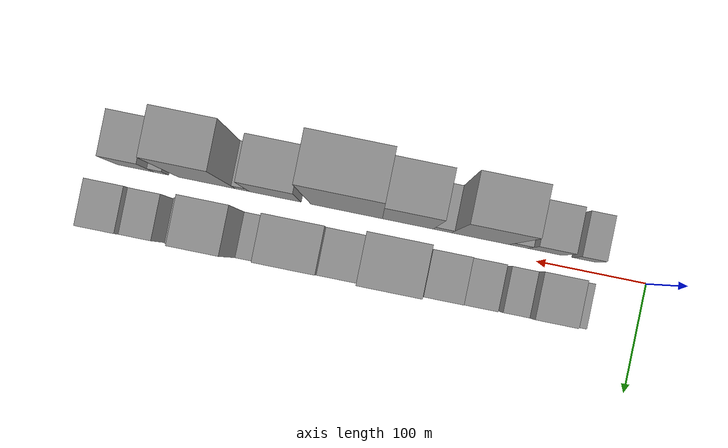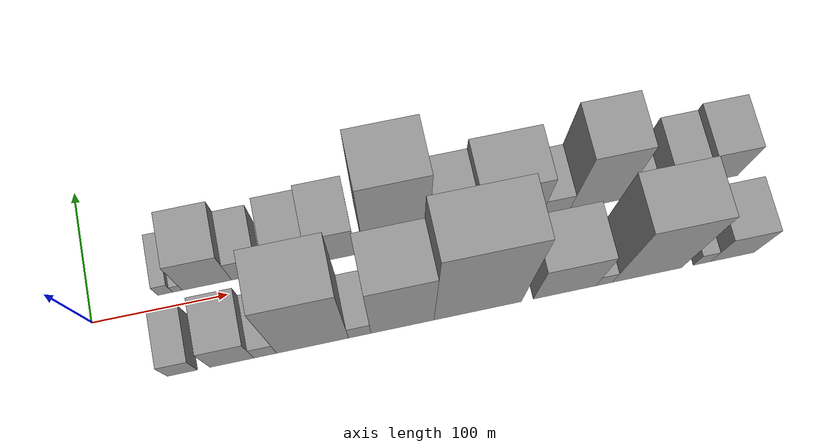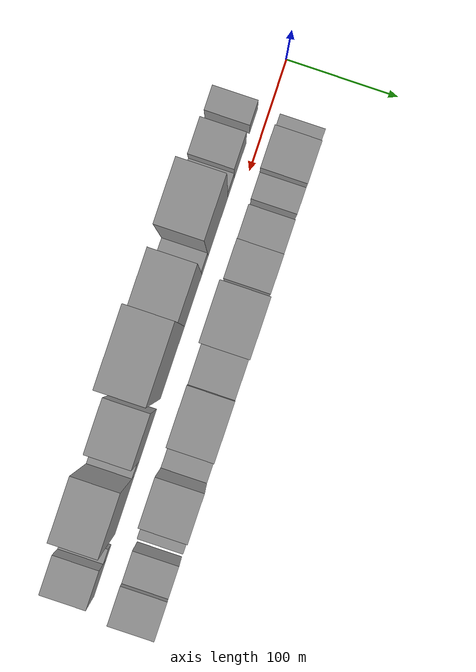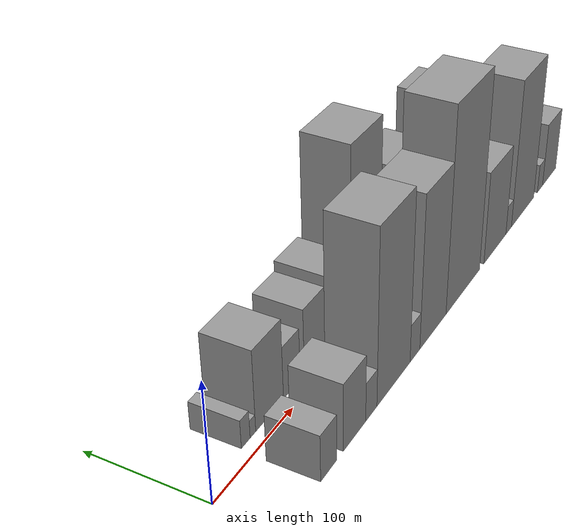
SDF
<sdf version="1.6">
 <world name="default">
  <scene>
   <sky><clouds><speed>12</speed></clouds></sky>
   <ambient>0.4 0.4 0.4 1</ambient>
   <background>0.7 0.7 0.7 1</background>
   <shadows>1</shadows>
  </scene>
  <gravity>0 0 -9.8066</gravity>
  <magnetic_field>6e-06 2.3e-05 -4.2e-05</magnetic_field>
  <physics default="0" name="default_physics" type="ode">
   <ode>
    <solver>
     <type>quick</type>
     <iters>10</iters>
     <sor>1.0</sor>
     <use_dynamic_moi_rescaling>0</use_dynamic_moi_rescaling>
    </solver>
    <constraints>
     <cfm>0</cfm>
     <erp>0.2</erp>
     <contact_max_correcting_vel>100</contact_max_correcting_vel>
     <contact_surface_layer>0.001</contact_surface_layer>
    </constraints>
   </ode>
   <max_step_size>0.004</max_step_size>
   <real_time_factor>1</real_time_factor>
   <real_time_update_rate>250</real_time_update_rate>
  </physics>
  <light name="sun" type="directional">
   <pose>0 0 10 0 0 0</pose>
   <diffuse>0.8 0.8 0.8 1</diffuse>
   <specular>0.2 0.2 0.2 1</specular>
   <attenuation>
    <range>1000</range>
    <constant>0.9</constant>
    <linear>0.01</linear>
    <quadratic>0.001</quadratic>
   </attenuation>
   <direction>-0.5 0.1 -0.9</direction>
  </light>
  <model name="building_1">
   <static>1</static>
   <pose>55.4585 30.0000 0 0.000000 0.000000 1.570796</pose>
   <link name="link">
    <pose>0 0 12.00 0 0 0</pose>
    <collision name="collision"><geometry><box><size>40.0000 10.9169 24.0000</size></box></geometry></collision>
    <visual name="visual">
     <cast_shadows>0</cast_shadows>
     <geometry><box><size>40.0000 10.9169 24.0000</size></box></geometry>
     <material>
      <script>
       <uri>model://grey_wall/materials/scripts</uri>
       <uri>model://grey_wall/materials/textures</uri>
       <name>vrc/grey_wall</name>
      </script>
     </material>
    </visual>
   </link>
  </model>
  <model name="building_2">
   <static>1</static>
   <pose>64.4685 30.0000 0 0.000000 0.000000 1.570796</pose>
   <link name="link">
    <pose>0 0 7.50 0 0 0</pose>
    <collision name="collision"><geometry><box><size>40.0000 7.1032 15.0000</size></box></geometry></collision>
    <visual name="visual">
     <cast_shadows>0</cast_shadows>
     <geometry><box><size>40.0000 7.1032 15.0000</size></box></geometry>
     <material>
      <script>
       <uri>model://grey_wall/materials/scripts</uri>
       <uri>model://grey_wall/materials/textures</uri>
       <name>vrc/grey_wall</name>
      </script>
     </material>
    </visual>
   </link>
  </model>
  <model name="building_3">
   <static>1</static>
   <pose>86.2862 30.0000 0 0.000000 0.000000 1.570796</pose>
   <link name="link">
    <pose>0 0 34.50 0 0 0</pose>
    <collision name="collision"><geometry><box><size>40.0000 36.5322 69.0000</size></box></geometry></collision>
    <visual name="visual">
     <cast_shadows>0</cast_shadows>
     <geometry><box><size>40.0000 36.5322 69.0000</size></box></geometry>
     <material>
      <script>
       <uri>model://grey_wall/materials/scripts</uri>
       <uri>model://grey_wall/materials/textures</uri>
       <name>vrc/grey_wall</name>
      </script>
     </material>
    </visual>
   </link>
  </model>
  <model name="building_4">
   <static>1</static>
   <pose>116.0360 30.0000 0 0.000000 0.000000 1.570796</pose>
   <link name="link">
    <pose>0 0 22.50 0 0 0</pose>
    <collision name="collision"><geometry><box><size>40.0000 22.9672 45.0000</size></box></geometry></collision>
    <visual name="visual">
     <cast_shadows>0</cast_shadows>
     <geometry><box><size>40.0000 22.9672 45.0000</size></box></geometry>
     <material>
      <script>
       <uri>model://grey_wall/materials/scripts</uri>
       <uri>model://grey_wall/materials/textures</uri>
       <name>vrc/grey_wall</name>
      </script>
     </material>
    </visual>
   </link>
  </model>
  <model name="building_5">
   <static>1</static>
   <pose>148.5240 30.0000 0 0.000000 0.000000 1.570796</pose>
   <link name="link">
    <pose>0 0 28.50 0 0 0</pose>
    <collision name="collision"><geometry><box><size>40.0000 30.0089 57.0000</size></box></geometry></collision>
    <visual name="visual">
     <cast_shadows>0</cast_shadows>
     <geometry><box><size>40.0000 30.0089 57.0000</size></box></geometry>
     <material>
      <script>
       <uri>model://grey_wall/materials/scripts</uri>
       <uri>model://grey_wall/materials/textures</uri>
       <name>vrc/grey_wall</name>
      </script>
     </material>
    </visual>
   </link>
  </model>
  <model name="building_6">
   <static>1</static>
   <pose>180.4652 30.0000 0 0.000000 0.000000 1.570796</pose>
   <link name="link">
    <pose>0 0 33.00 0 0 0</pose>
    <collision name="collision"><geometry><box><size>40.0000 33.8734 66.0000</size></box></geometry></collision>
    <visual name="visual">
     <cast_shadows>0</cast_shadows>
     <geometry><box><size>40.0000 33.8734 66.0000</size></box></geometry>
     <material>
      <script>
       <uri>model://grey_wall/materials/scripts</uri>
       <uri>model://grey_wall/materials/textures</uri>
       <name>vrc/grey_wall</name>
      </script>
     </material>
    </visual>
   </link>
  </model>
  <model name="building_7">
   <static>1</static>
   <pose>227.9092 30.0000 0 0.000000 0.000000 1.570796</pose>
   <link name="link">
    <pose>0 0 75.00 0 0 0</pose>
    <collision name="collision"><geometry><box><size>40.0000 49.0146 150.0000</size></box></geometry></collision>
    <visual name="visual">
     <cast_shadows>0</cast_shadows>
     <geometry><box><size>40.0000 49.0146 150.0000</size></box></geometry>
     <material>
      <script>
       <uri>model://grey_wall/materials/scripts</uri>
       <uri>model://grey_wall/materials/textures</uri>
       <name>vrc/grey_wall</name>
      </script>
     </material>
    </visual>
   </link>
  </model>
  <model name="building_8">
   <static>1</static>
   <pose>269.6716 30.0000 0 0.000000 0.000000 1.570796</pose>
   <link name="link">
    <pose>0 0 34.50 0 0 0</pose>
    <collision name="collision"><geometry><box><size>40.0000 34.5102 69.0000</size></box></geometry></collision>
    <visual name="visual">
     <cast_shadows>0</cast_shadows>
     <geometry><box><size>40.0000 34.5102 69.0000</size></box></geometry>
     <material>
      <script>
       <uri>model://grey_wall/materials/scripts</uri>
       <uri>model://grey_wall/materials/textures</uri>
       <name>vrc/grey_wall</name>
      </script>
     </material>
    </visual>
   </link>
  </model>
  <model name="building_9">
   <static>1</static>
   <pose>312.7541 30.0000 0 0.000000 0.000000 1.570796</pose>
   <link name="link">
    <pose>0 0 43.50 0 0 0</pose>
    <collision name="collision"><geometry><box><size>40.0000 51.6549 87.0000</size></box></geometry></collision>
    <visual name="visual">
     <cast_shadows>0</cast_shadows>
     <geometry><box><size>40.0000 51.6549 87.0000</size></box></geometry>
     <material>
      <script>
       <uri>model://grey_wall/materials/scripts</uri>
       <uri>model://grey_wall/materials/textures</uri>
       <name>vrc/grey_wall</name>
      </script>
     </material>
    </visual>
   </link>
  </model>
  <model name="building_10">
   <static>1</static>
   <pose>349.2886 30.0000 0 0.000000 0.000000 1.570796</pose>
   <link name="link">
    <pose>0 0 18.00 0 0 0</pose>
    <collision name="collision"><geometry><box><size>40.0000 21.4142 36.0000</size></box></geometry></collision>
    <visual name="visual">
     <cast_shadows>0</cast_shadows>
     <geometry><box><size>40.0000 21.4142 36.0000</size></box></geometry>
     <material>
      <script>
       <uri>model://grey_wall/materials/scripts</uri>
       <uri>model://grey_wall/materials/textures</uri>
       <name>vrc/grey_wall</name>
      </script>
     </material>
    </visual>
   </link>
  </model>
  <model name="building_11">
   <static>1</static>
   <pose>380.5333 30.0000 0 0.000000 0.000000 1.570796</pose>
   <link name="link">
    <pose>0 0 57.00 0 0 0</pose>
    <collision name="collision"><geometry><box><size>40.0000 41.0752 114.0000</size></box></geometry></collision>
    <visual name="visual">
     <cast_shadows>0</cast_shadows>
     <geometry><box><size>40.0000 41.0752 114.0000</size></box></geometry>
     <material>
      <script>
       <uri>model://grey_wall/materials/scripts</uri>
       <uri>model://grey_wall/materials/textures</uri>
       <name>vrc/grey_wall</name>
      </script>
     </material>
    </visual>
   </link>
  </model>
  <model name="building_12">
   <static>1</static>
   <pose>411.2845 30.0000 0 0.000000 0.000000 1.570796</pose>
   <link name="link">
    <pose>0 0 18.00 0 0 0</pose>
    <collision name="collision"><geometry><box><size>40.0000 20.4271 36.0000</size></box></geometry></collision>
    <visual name="visual">
     <cast_shadows>0</cast_shadows>
     <geometry><box><size>40.0000 20.4271 36.0000</size></box></geometry>
     <material>
      <script>
       <uri>model://grey_wall/materials/scripts</uri>
       <uri>model://grey_wall/materials/textures</uri>
       <name>vrc/grey_wall</name>
      </script>
     </material>
    </visual>
   </link>
  </model>
  <model name="building_13">
   <static>1</static>
   <pose>443.3908 30.0000 0 0.000000 0.000000 1.570796</pose>
   <link name="link">
    <pose>0 0 25.50 0 0 0</pose>
    <collision name="collision"><geometry><box><size>40.0000 27.7856 51.0000</size></box></geometry></collision>
    <visual name="visual">
     <cast_shadows>0</cast_shadows>
     <geometry><box><size>40.0000 27.7856 51.0000</size></box></geometry>
     <material>
      <script>
       <uri>model://grey_wall/materials/scripts</uri>
       <uri>model://grey_wall/materials/textures</uri>
       <name>vrc/grey_wall</name>
      </script>
     </material>
    </visual>
   </link>
  </model>
  <model name="building_14">
   <static>1</static>
   <pose>474.1393 30.0000 0 0.000000 0.000000 1.570796</pose>
   <link name="link">
    <pose>0 0 31.50 0 0 0</pose>
    <collision name="collision"><geometry><box><size>40.0000 33.7114 63.0000</size></box></geometry></collision>
    <visual name="visual">
     <cast_shadows>0</cast_shadows>
     <geometry><box><size>40.0000 33.7114 63.0000</size></box></geometry>
     <material>
      <script>
       <uri>model://grey_wall/materials/scripts</uri>
       <uri>model://grey_wall/materials/textures</uri>
       <name>vrc/grey_wall</name>
      </script>
     </material>
    </visual>
   </link>
  </model>
  <model name="building_15">
   <static>1</static>
   <pose>58.9016 -30.0000 0 0.000000 0.000000 1.570796</pose>
   <link name="link">
    <pose>0 0 19.50 0 0 0</pose>
    <collision name="collision"><geometry><box><size>40.0000 21.8032 39.0000</size></box></geometry></collision>
    <visual name="visual">
     <cast_shadows>0</cast_shadows>
     <geometry><box><size>40.0000 21.8032 39.0000</size></box></geometry>
     <material>
      <script>
       <uri>model://grey_wall/materials/scripts</uri>
       <uri>model://grey_wall/materials/textures</uri>
       <name>vrc/grey_wall</name>
      </script>
     </material>
    </visual>
   </link>
  </model>
  <model name="building_16">
   <static>1</static>
   <pose>94.7567 -30.0000 0 0.000000 0.000000 1.570796</pose>
   <link name="link">
    <pose>0 0 28.50 0 0 0</pose>
    <collision name="collision"><geometry><box><size>40.0000 31.9071 57.0000</size></box></geometry></collision>
    <visual name="visual">
     <cast_shadows>0</cast_shadows>
     <geometry><box><size>40.0000 31.9071 57.0000</size></box></geometry>
     <material>
      <script>
       <uri>model://grey_wall/materials/scripts</uri>
       <uri>model://grey_wall/materials/textures</uri>
       <name>vrc/grey_wall</name>
      </script>
     </material>
    </visual>
   </link>
  </model>
  <model name="building_17">
   <static>1</static>
   <pose>119.0610 -30.0000 0 0.000000 0.000000 1.570796</pose>
   <link name="link">
    <pose>0 0 16.50 0 0 0</pose>
    <collision name="collision"><geometry><box><size>40.0000 16.7014 33.0000</size></box></geometry></collision>
    <visual name="visual">
     <cast_shadows>0</cast_shadows>
     <geometry><box><size>40.0000 16.7014 33.0000</size></box></geometry>
     <material>
      <script>
       <uri>model://grey_wall/materials/scripts</uri>
       <uri>model://grey_wall/materials/textures</uri>
       <name>vrc/grey_wall</name>
      </script>
     </material>
    </visual>
   </link>
  </model>
  <model name="building_18">
   <static>1</static>
   <pose>153.7601 -30.0000 0 0.000000 0.000000 1.570796</pose>
   <link name="link">
    <pose>0 0 73.50 0 0 0</pose>
    <collision name="collision"><geometry><box><size>40.0000 52.6967 147.0000</size></box></geometry></collision>
    <visual name="visual">
     <cast_shadows>0</cast_shadows>
     <geometry><box><size>40.0000 52.6967 147.0000</size></box></geometry>
     <material>
      <script>
       <uri>model://grey_wall/materials/scripts</uri>
       <uri>model://grey_wall/materials/textures</uri>
       <name>vrc/grey_wall</name>
      </script>
     </material>
    </visual>
   </link>
  </model>
  <model name="building_19">
   <static>1</static>
   <pose>188.3631 -30.0000 0 0.000000 0.000000 1.570796</pose>
   <link name="link">
    <pose>0 0 16.50 0 0 0</pose>
    <collision name="collision"><geometry><box><size>40.0000 16.5093 33.0000</size></box></geometry></collision>
    <visual name="visual">
     <cast_shadows>0</cast_shadows>
     <geometry><box><size>40.0000 16.5093 33.0000</size></box></geometry>
     <material>
      <script>
       <uri>model://grey_wall/materials/scripts</uri>
       <uri>model://grey_wall/materials/textures</uri>
       <name>vrc/grey_wall</name>
      </script>
     </material>
    </visual>
   </link>
  </model>
  <model name="building_20">
   <static>1</static>
   <pose>219.9151 -30.0000 0 0.000000 0.000000 1.570796</pose>
   <link name="link">
    <pose>0 0 66.00 0 0 0</pose>
    <collision name="collision"><geometry><box><size>40.0000 46.5947 132.0000</size></box></geometry></collision>
    <visual name="visual">
     <cast_shadows>0</cast_shadows>
     <geometry><box><size>40.0000 46.5947 132.0000</size></box></geometry>
     <material>
      <script>
       <uri>model://grey_wall/materials/scripts</uri>
       <uri>model://grey_wall/materials/textures</uri>
       <name>vrc/grey_wall</name>
      </script>
     </material>
    </visual>
   </link>
  </model>
  <model name="building_21">
   <static>1</static>
   <pose>275.8373 -30.0000 0 0.000000 0.000000 1.570796</pose>
   <link name="link">
    <pose>0 0 88.50 0 0 0</pose>
    <collision name="collision"><geometry><box><size>40.0000 65.2498 177.0000</size></box></geometry></collision>
    <visual name="visual">
     <cast_shadows>0</cast_shadows>
     <geometry><box><size>40.0000 65.2498 177.0000</size></box></geometry>
     <material>
      <script>
       <uri>model://grey_wall/materials/scripts</uri>
       <uri>model://grey_wall/materials/textures</uri>
       <name>vrc/grey_wall</name>
      </script>
     </material>
    </visual>
   </link>
  </model>
  <model name="building_22">
   <static>1</static>
   <pose>341.1310 -30.0000 0 0.000000 0.000000 1.570796</pose>
   <link name="link">
    <pose>0 0 42.00 0 0 0</pose>
    <collision name="collision"><geometry><box><size>40.0000 47.3375 84.0000</size></box></geometry></collision>
    <visual name="visual">
     <cast_shadows>0</cast_shadows>
     <geometry><box><size>40.0000 47.3375 84.0000</size></box></geometry>
     <material>
      <script>
       <uri>model://grey_wall/materials/scripts</uri>
       <uri>model://grey_wall/materials/textures</uri>
       <name>vrc/grey_wall</name>
      </script>
     </material>
    </visual>
   </link>
  </model>
  <model name="building_23">
   <static>1</static>
   <pose>371.0348 -30.0000 0 0.000000 0.000000 1.570796</pose>
   <link name="link">
    <pose>0 0 13.50 0 0 0</pose>
    <collision name="collision"><geometry><box><size>40.0000 12.4702 27.0000</size></box></geometry></collision>
    <visual name="visual">
     <cast_shadows>0</cast_shadows>
     <geometry><box><size>40.0000 12.4702 27.0000</size></box></geometry>
     <material>
      <script>
       <uri>model://grey_wall/materials/scripts</uri>
       <uri>model://grey_wall/materials/textures</uri>
       <name>vrc/grey_wall</name>
      </script>
     </material>
    </visual>
   </link>
  </model>
  <model name="building_24">
   <static>1</static>
   <pose>403.5535 -30.0000 0 0.000000 0.000000 1.570796</pose>
   <link name="link">
    <pose>0 0 67.50 0 0 0</pose>
    <collision name="collision"><geometry><box><size>40.0000 52.5672 135.0000</size></box></geometry></collision>
    <visual name="visual">
     <cast_shadows>0</cast_shadows>
     <geometry><box><size>40.0000 52.5672 135.0000</size></box></geometry>
     <material>
      <script>
       <uri>model://grey_wall/materials/scripts</uri>
       <uri>model://grey_wall/materials/textures</uri>
       <name>vrc/grey_wall</name>
      </script>
     </material>
    </visual>
   </link>
  </model>
  <model name="building_25">
   <static>1</static>
   <pose>445.2921 -30.0000 0 0.000000 0.000000 1.570796</pose>
   <link name="link">
    <pose>0 0 13.50 0 0 0</pose>
    <collision name="collision"><geometry><box><size>40.0000 12.9100 27.0000</size></box></geometry></collision>
    <visual name="visual">
     <cast_shadows>0</cast_shadows>
     <geometry><box><size>40.0000 12.9100 27.0000</size></box></geometry>
     <material>
      <script>
       <uri>model://grey_wall/materials/scripts</uri>
       <uri>model://grey_wall/materials/textures</uri>
       <name>vrc/grey_wall</name>
      </script>
     </material>
    </visual>
   </link>
  </model>
  <model name="building_26">
   <static>1</static>
   <pose>468.6431 -30.0000 0 0.000000 0.000000 1.570796</pose>
   <link name="link">
    <pose>0 0 30.00 0 0 0</pose>
    <collision name="collision"><geometry><box><size>40.0000 33.7920 60.0000</size></box></geometry></collision>
    <visual name="visual">
     <cast_shadows>0</cast_shadows>
     <geometry><box><size>40.0000 33.7920 60.0000</size></box></geometry>
     <material>
      <script>
       <uri>model://grey_wall/materials/scripts</uri>
       <uri>model://grey_wall/materials/textures</uri>
       <name>vrc/grey_wall</name>
      </script>
     </material>
    </visual>
   </link>
  </model>
 </world>
</sdf>
